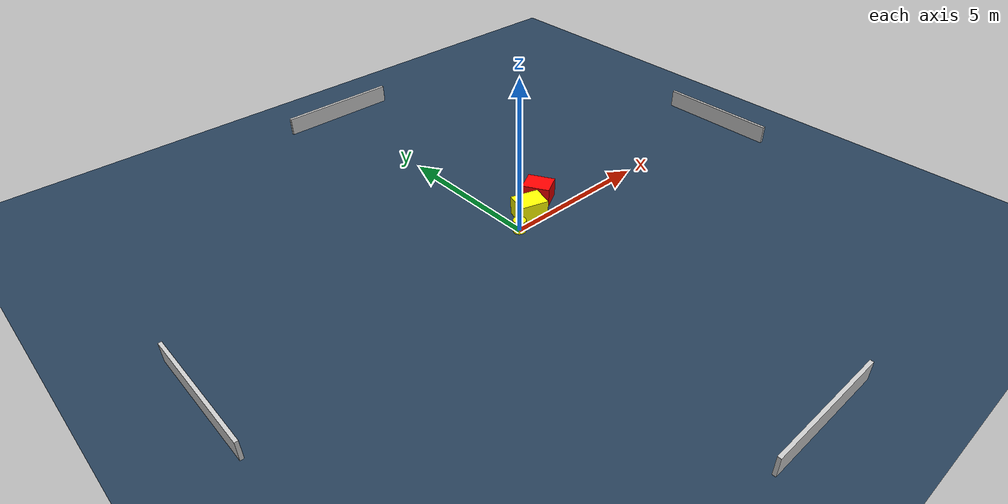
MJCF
<?xml version="1.0" ?>
<mujoco model="generated_environment">
  <option timestep="0.01" integrator="RK4" cone="elliptic"/>
  <default>
    <geom density="1"/>
  </default>
  <asset>
    <texture builtin="gradient" height="3072" name="skybox" rgb1="0.3 0.5 0.7" rgb2="0 0 0" type="skybox" width="512"/>
    <texture builtin="checker" height="300" name="groundplane" rgb1="0.2 0.3 0.4" rgb2="0.1 0.2 0.3" type="2d" width="300"/>
    <material name="groundplane" reflectance="0.2" texrepeat="5 5" texture="groundplane"/>
  </asset>
  <worldbody>
    <light dir="0 0 -1" directional="true" pos="0 0 1.5"/>
    <geom condim="3" friction="0.5 0.005 0.001" material="groundplane" name="floor" pos="0 0 0" size="0 0 0.05" type="plane"/>
    <body name="walls">
      <geom name="wall_1" condim="4" pos="-10.0 0.0 0.3" rgba="0.800000011920929 0.800000011920929 0.800000011920929 1.0" size="0.05 2.0 0.3" type="box"/>
      <geom name="wall_2" condim="4" pos="10.0 0.0 0.3" rgba="0.800000011920929 0.800000011920929 0.800000011920929 1.0" size="0.05 2.0 0.3" type="box"/>
      <geom name="wall_3" condim="4" pos="0.0 -10.0 0.3" rgba="0.800000011920929 0.800000011920929 0.800000011920929 1.0" size="2.0 0.05 0.3" type="box"/>
      <geom name="wall_4" condim="4" pos="0.0 10.0 0.3" rgba="0.800000011920929 0.800000011920929 0.800000011920929 1.0" size="2.0 0.05 0.3" type="box"/>
    </body>
    <body name="robot">
      <joint name="joint_x" type="slide" pos="0 0 0" axis="1 0 0"/>
      <joint name="joint_y" type="slide" pos="0 0 0" axis="0 1 0"/>
      <geom name="robot" type="cylinder" pos="0.0 0.0 0.2" size="0.2 0.2 0.0" mass="5.0" friction="1.0 0.005 0.0001" condim="4" rgba="1.0 1.0 0.0 1.0"/>
    </body>
    <body name="obstacle_1_movable">
      <geom name="obstacle_1_movable" condim="4" pos="0.7761069443201292 0.39226893216224745 0.3" euler="0 0 163.25150852183523" friction="0.0 0.005 0.001" rgba="1.0 1.0 0.0 1.0" size="0.4627545245542685 0.3642243442135202 0.3" type="box" mass="0.1"/>
      <joint type="free"/>
    </body>
    <body name="obstacle_2_static">
      <geom name="obstacle_2_static" condim="4" pos="1.6471378467592683 0.8829040956098085 0.3" euler="0 0 119.55972274630528" friction="0.0 0.005 0.001" rgba="1.0 0.0 0.0 1.0" size="0.4396502031895525 0.3586117605521512 0.3" type="box"/>
    </body>
  </worldbody>
  <actuator>
    <motor name="actuator_x" joint="joint_x" gear="1" ctrlrange="-1 1"/>
    <motor name="actuator_y" joint="joint_y" gear="1" ctrlrange="-1 1"/>
  </actuator>
</mujoco>
